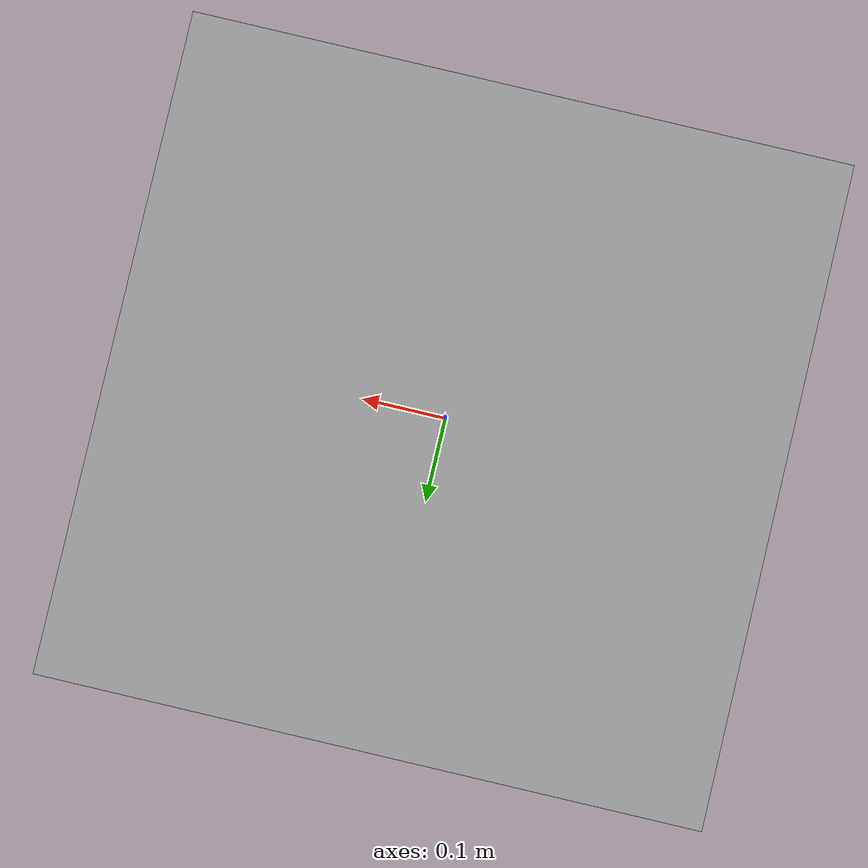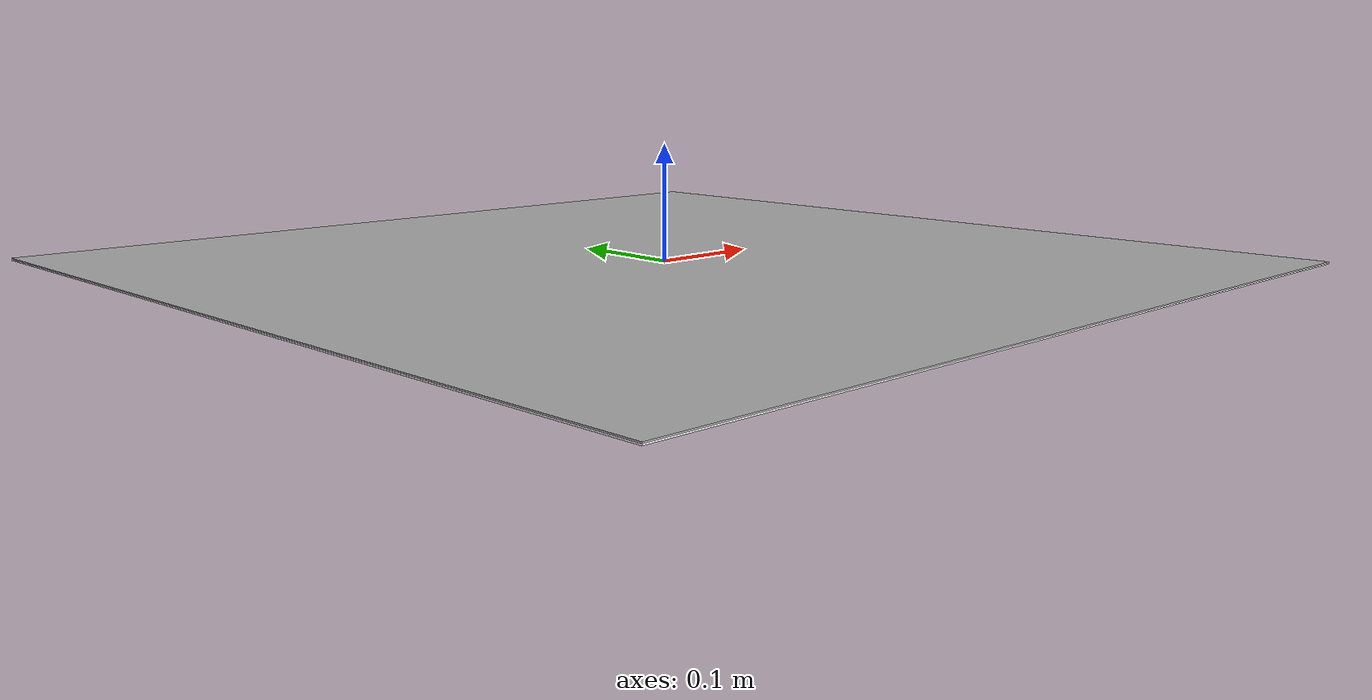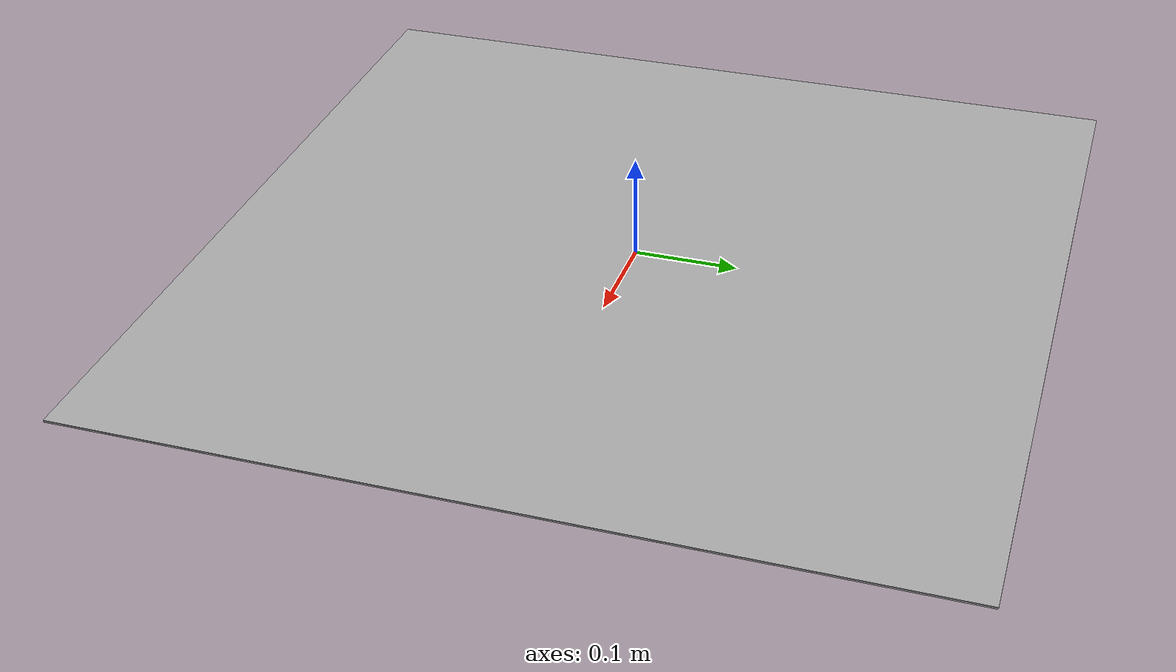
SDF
<?xml version='1.0' encoding='utf-8'?>
<sdf version='1.9'>
<model name='figure'>
  <pose>0 0 0 0 0 0</pose>
  <static>true</static>
  <self_collide>false</self_collide>
  <link name='box_link'>
    <collision name='box_collision'>
      <geometry>
        <box>
          <size>0.8 0.8 0.002</size>
        </box>
      </geometry>
      <surface>
        <friction>
          <ode/>
        </friction>
        <bounce/>
        <contact/>
      </surface>
    </collision>
    <visual name='visual'>
      <pose>0 0 -0.0005 0 0 0</pose>
      <geometry>
        <box>
          <size>0.8 0.8 0.001</size>
        </box>
      </geometry>
      <material>
        <ambient>1 1 1 1</ambient> <!-- white -->
        <diffuse>1 1 1 1</diffuse>
        <specular>1 1 1 1</specular>
        <emissive>1 1 1 1</emissive>
      </material>
      <cast_shadows>false</cast_shadows>
    </visual>
    <visual name='image'>
      <pose>0 0 0.0005 0 0 0</pose>
      <geometry>
        <box>
          <size>0.8 0.8 0.001</size>
        </box>
      </geometry>
      <material>
        <diffuse>0.7 0.7 0.7 1</diffuse>
        <specular>1 1 1 1</specular>
        <pbr>
          <metal>
            <albedo_map>materials/textures/pentagono_vermelho.png</albedo_map>   <!-- image-->
            <metalness> 0 </metalness>
            <roughness>1</roughness>
          </metal>
        </pbr>
      </material>
      <cast_shadows>false</cast_shadows>
    </visual>
    <enable_wind>false</enable_wind>
  </link>
</model>
</sdf>
